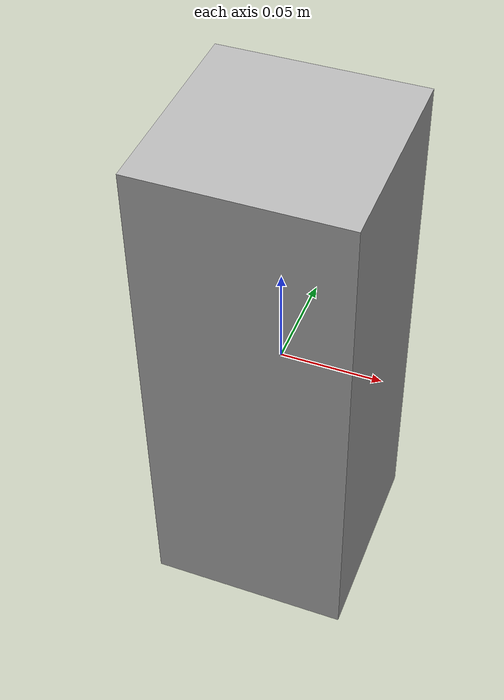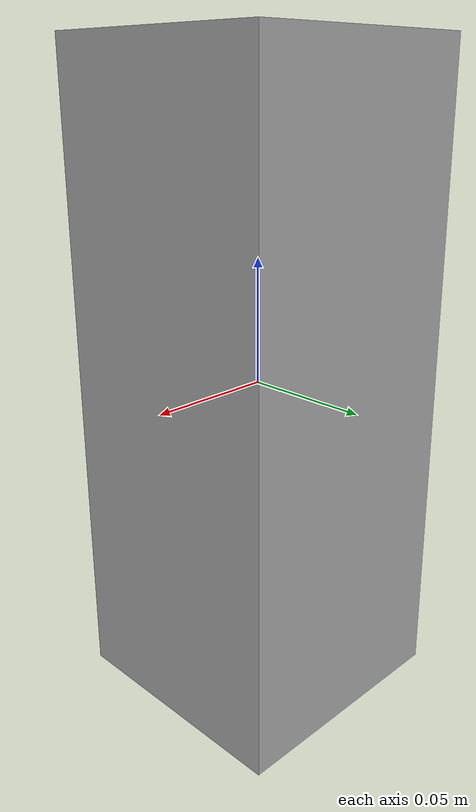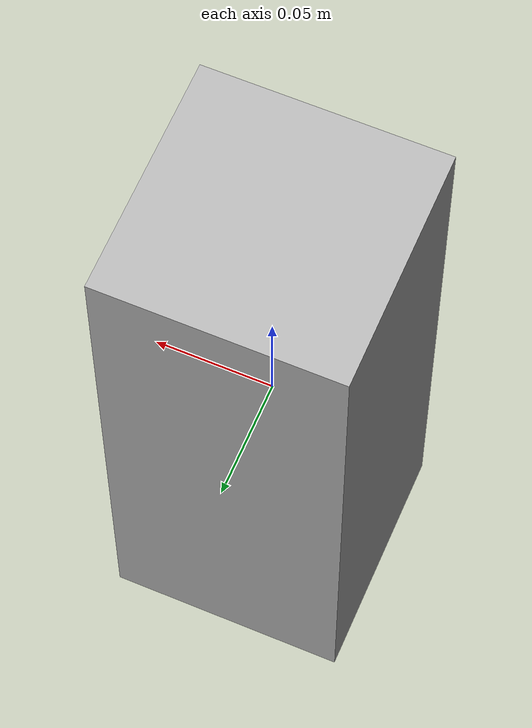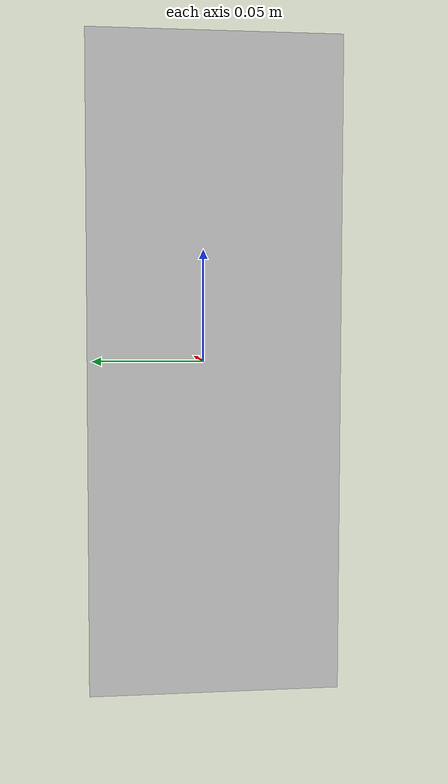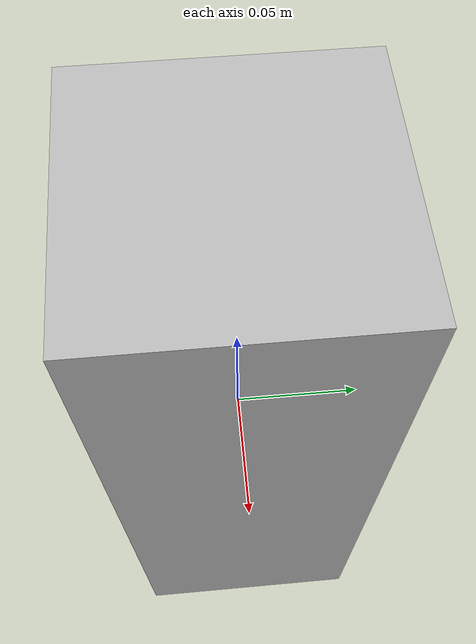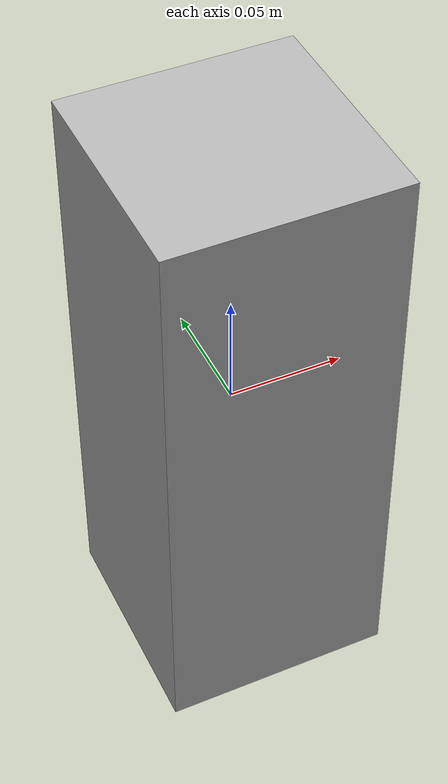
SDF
<?xml version="1.0"?>
<sdf version="1.7">
  <model name="payload_box">
    <link name="payload_box_link">
      <inertial>
        <pose>0 0 0.07 0 0 0</pose>
        <mass>3.863</mass>
        <inertia>
          <ixx>0.5</ixx>
          <ixy>0</ixy>
          <ixz>0</ixz>
          <iyy>0.5</iyy>
          <iyz>0</iyz>
          <izz>0.5</izz>
        </inertia>
      </inertial>
      <visual name="visual">
        <pose>0 0 0 0 0 0</pose>
        <geometry>
          <box>
            <size>.1 .1 .26</size>
          </box>
        </geometry>
        <material>
          <diffuse>0.7 0.7 0.7 1.0</diffuse>
        </material>
      </visual>
      <collision name="collision">
        <pose>0 0 0 0 0 0</pose>
        <geometry>
          <box>
            <size>.1 .1 .26</size>
          </box>
        </geometry>
      </collision>
    </link>
  </model>
</sdf>
